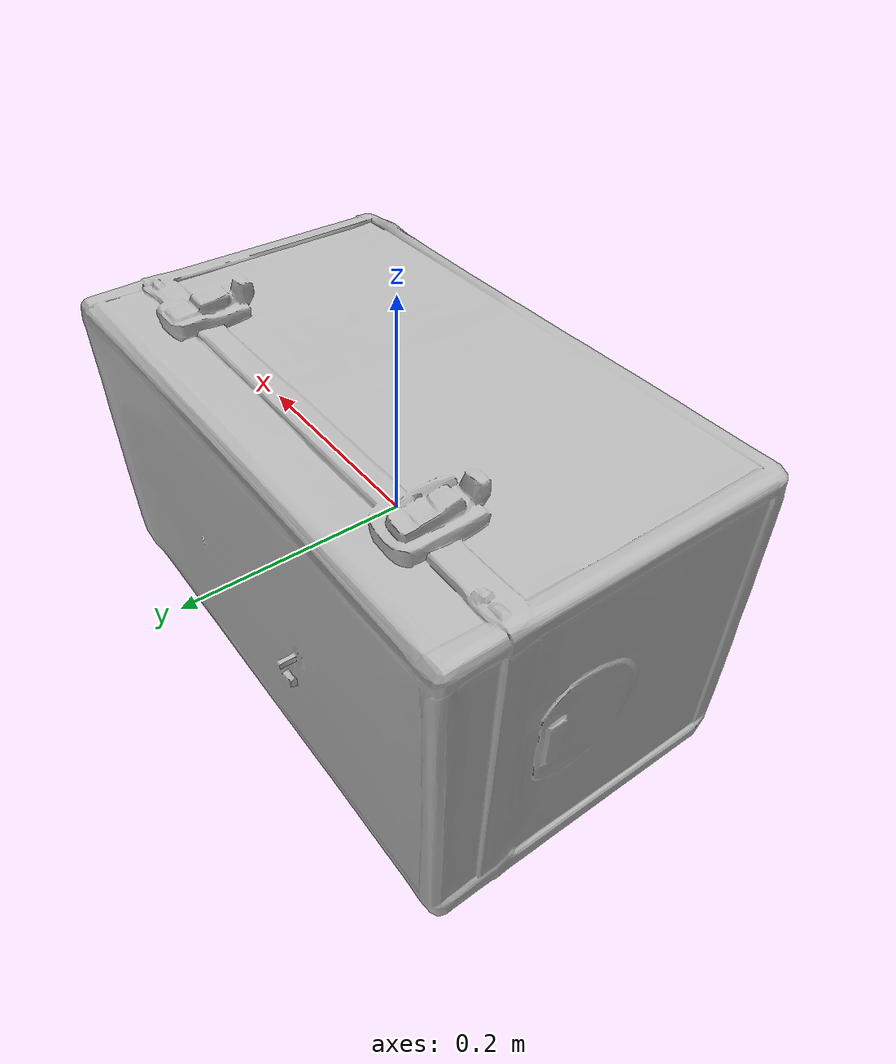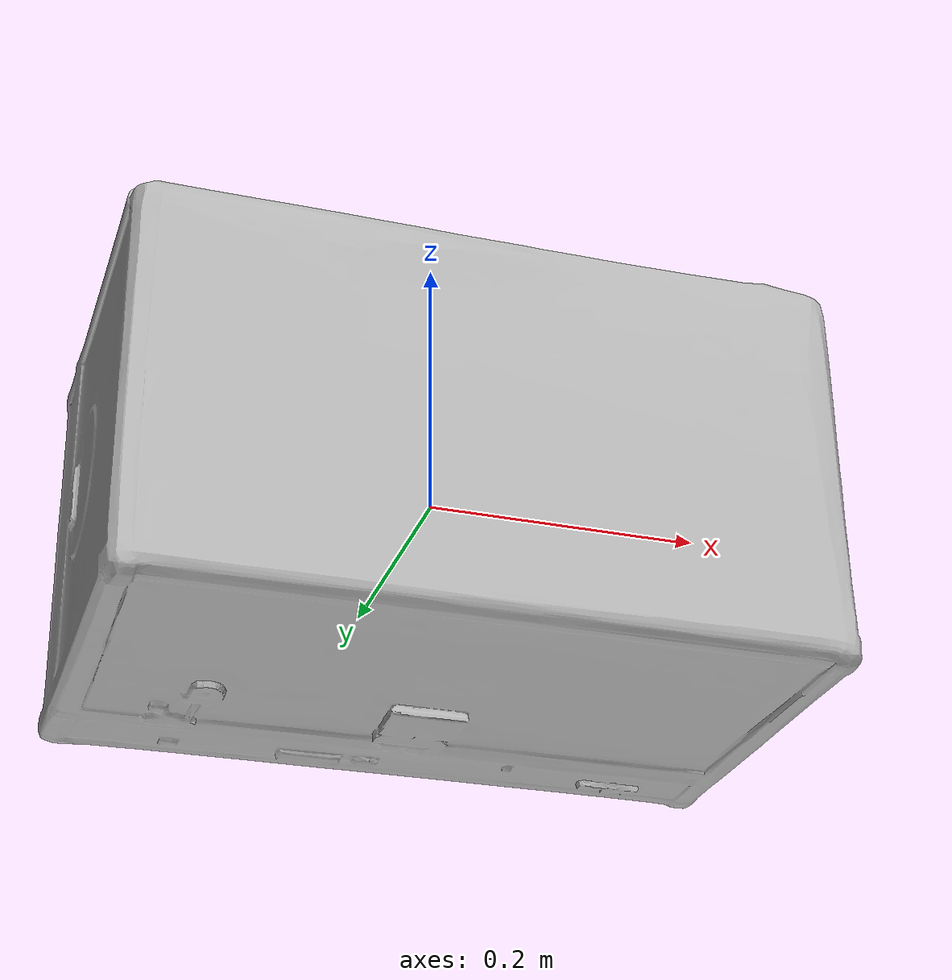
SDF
<?xml version='1.0' ?>
<sdf version='1.6'>
  <model name='First Aid Kit'>
    <static>true</static>
    <link name='link'>
      <collision name='collision'>
        <geometry>
          <mesh>
            <uri>meshes/first_aid_kit.dae</uri>
            <scale>0.5 0.5 0.5</scale>
          </mesh>
        </geometry>
      </collision>
      <visual name='visual'>
        <geometry>
          <mesh>
            <uri>meshes/first_aid_kit.dae</uri>
            <scale>0.5 0.5 0.5</scale>
          </mesh>
        </geometry>
      </visual>
    </link>
  </model>
</sdf>
